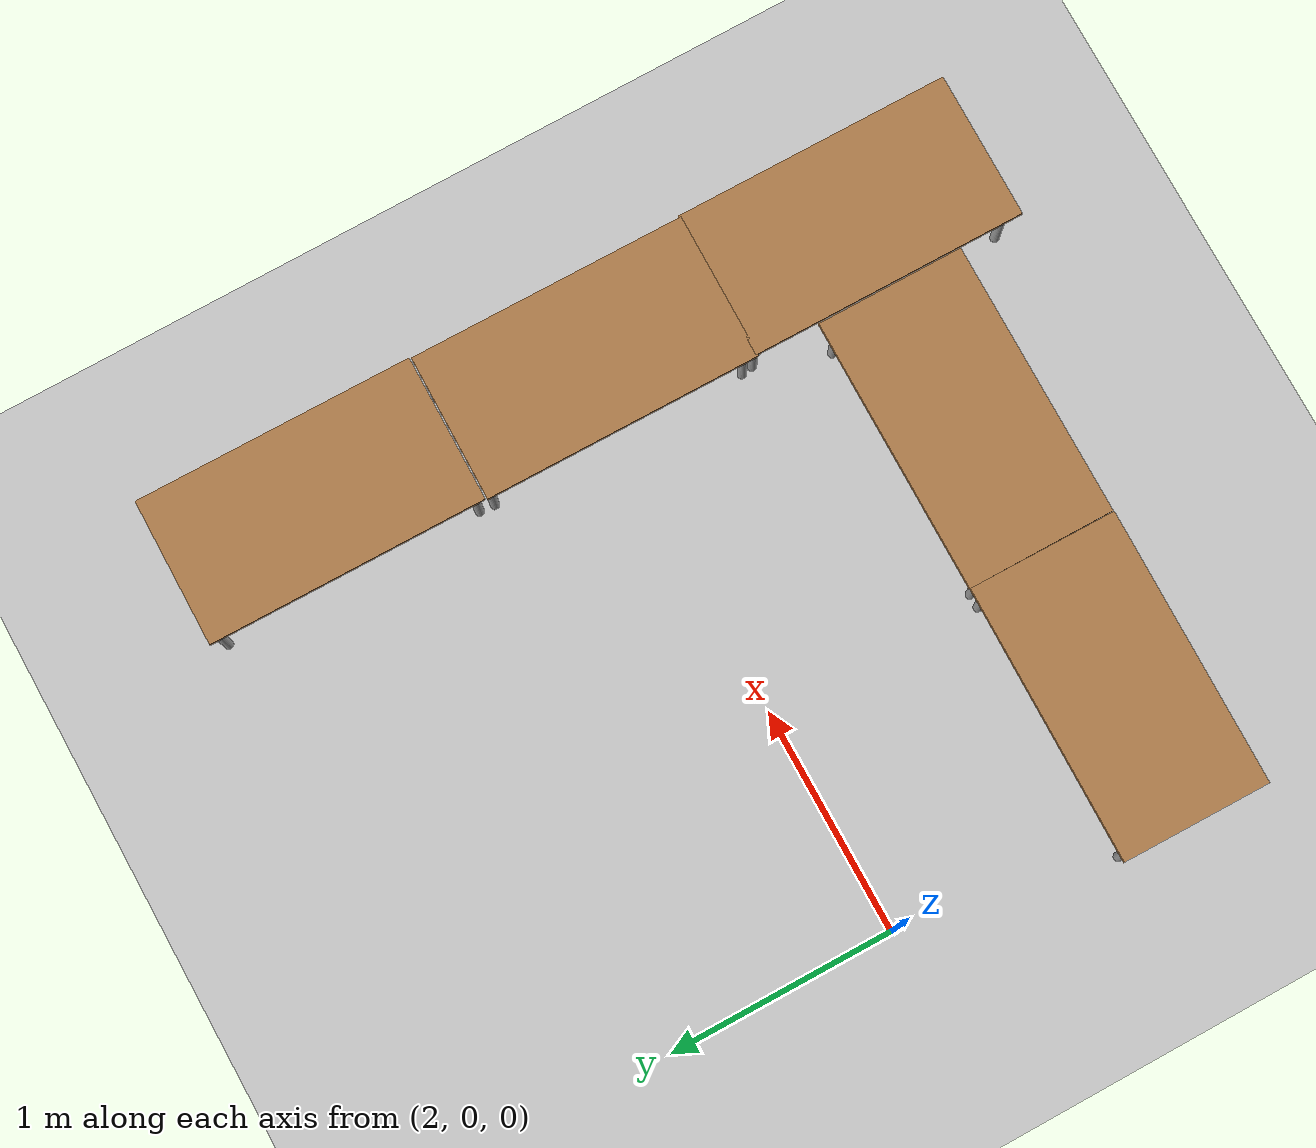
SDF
<sdf version="1.7">
 <world name="default">
  <model name="ground_plane">
   <static>1</static>
   <link name="link">
    <collision name="collision">
     <geometry><plane><normal>0 0 1</normal><size>100 100</size></plane></geometry>
     <surface>
      <contact><collide_bitmask>65535</collide_bitmask></contact>
      <friction><ode><mu>100</mu><mu2>50</mu2></ode></friction>
     </surface>
    </collision>
    <visual name="visual">
     <cast_shadows>0</cast_shadows>
     <geometry><plane><normal>0 0 1</normal><size>100 100</size></plane></geometry>
     <material>
      <script><uri>file://media/materials/scripts/gazebo.material</uri><name>Gazebo/Grey</name></script>
     </material>
    </visual>
   </link>
  </model>
  <model name="table_for_pc_clone_8">
   <link name="link">
    <inertial>
     <mass>1</mass>
     <inertia><ixx>1</ixx><ixy>0</ixy><ixz>0</ixz><iyy>1</iyy><iyz>0</iyz><izz>1</izz></inertia>
    </inertial>
    <visual name="back_right_leg">
     <pose>-0.57 -0.25 0.25 0 -0 0</pose>
     <geometry><cylinder><radius>0.02</radius><length>0.5</length></cylinder></geometry>
     <material>
      <script><uri>file://media/materials/scripts/gazebo.material</uri><name>Gazebo/Grey</name></script>
      <shader type="vertex"><normal_map>__default__</normal_map></shader>
      <ambient>0.3 0.3 0.3 1</ambient>
      <diffuse>0.7 0.7 0.7 1</diffuse>
      <specular>0.01 0.01 0.01 1</specular>
      <emissive>0 0 0 1</emissive>
     </material>
    </visual>
    <visual name="back_left_leg">
     <pose>-0.57 0.25 0.25 0 -0 0</pose>
     <geometry><cylinder><radius>0.02</radius><length>0.5</length></cylinder></geometry>
     <material>
      <script><uri>file://media/materials/scripts/gazebo.material</uri><name>Gazebo/Grey</name></script>
      <shader type="vertex"><normal_map>__default__</normal_map></shader>
      <ambient>0.3 0.3 0.3 1</ambient>
      <diffuse>0.7 0.7 0.7 1</diffuse>
      <specular>0.01 0.01 0.01 1</specular>
      <emissive>0 0 0 1</emissive>
     </material>
    </visual>
    <visual name="front_right_leg">
     <pose>0.57 -0.25 0.25 0 -0 0</pose>
     <geometry><cylinder><radius>0.02</radius><length>0.5</length></cylinder></geometry>
     <material>
      <script><uri>file://media/materials/scripts/gazebo.material</uri><name>Gazebo/Grey</name></script>
      <shader type="vertex"><normal_map>__default__</normal_map></shader>
      <ambient>0.3 0.3 0.3 1</ambient>
      <diffuse>0.7 0.7 0.7 1</diffuse>
      <specular>0.01 0.01 0.01 1</specular>
      <emissive>0 0 0 1</emissive>
     </material>
    </visual>
    <visual name="visual1">
     <pose>0 0 0.5 0 -0 0</pose>
     <geometry><box><size>1.2 0.64 0.024</size></box></geometry>
     <material>
      <script><uri>file://media/materials/scripts/gazebo.material</uri><name>Gazebo/Wood</name></script>
      <shader type="vertex"><normal_map>__default__</normal_map></shader>
      <ambient>1 1 1 1</ambient>
      <diffuse>1 1 1 1</diffuse>
      <specular>0.2 0.2 0.2 1</specular>
      <emissive>0 0 0 1</emissive>
     </material>
    </visual>
    <visual name="front_left_leg">
     <pose>0.57 0.25 0.25 0 -0 0</pose>
     <geometry><cylinder><radius>0.02</radius><length>0.5</length></cylinder></geometry>
     <material>
      <script><uri>file://media/materials/scripts/gazebo.material</uri><name>Gazebo/Grey</name></script>
      <shader type="vertex"><normal_map>__default__</normal_map></shader>
      <ambient>0.3 0.3 0.3 1</ambient>
      <diffuse>0.7 0.7 0.7 1</diffuse>
      <specular>0.01 0.01 0.01 1</specular>
      <emissive>0 0 0 1</emissive>
     </material>
    </visual>
    <collision name="surface">
     <pose>0 0 0.5 0 -0 0</pose>
     <geometry><box><size>1.2 0.64 0.024</size></box></geometry>
     <surface>
      <friction>
       <ode><mu>0.6</mu><mu2>0.6</mu2><fdir1>0 0 0</fdir1><slip1>0</slip1><slip2>0</slip2></ode>
       <torsional>
        <coefficient>1</coefficient>
        <patch_radius>0</patch_radius>
        <surface_radius>0</surface_radius>
        <use_patch_radius>1</use_patch_radius>
        <ode><slip>0</slip></ode>
       </torsional>
      </friction>
      <bounce><restitution_coefficient>0</restitution_coefficient><threshold>1e+06</threshold></bounce>
      <contact>
       <collide_without_contact>0</collide_without_contact>
       <collide_without_contact_bitmask>1</collide_without_contact_bitmask>
       <collide_bitmask>1</collide_bitmask>
       <ode>
        <soft_cfm>0</soft_cfm>
        <soft_erp>0.2</soft_erp>
        <kp>1e+13</kp>
        <kd>1</kd>
        <max_vel>0.01</max_vel>
        <min_depth>0</min_depth>
       </ode>
       <bullet>
        <split_impulse>1</split_impulse>
        <split_impulse_penetration_threshold>-0.01</split_impulse_penetration_threshold>
        <soft_cfm>0</soft_cfm>
        <soft_erp>0.2</soft_erp>
        <kp>1e+13</kp>
        <kd>1</kd>
       </bullet>
      </contact>
     </surface>
    </collision>
    <collision name="back_right_leg">
     <pose>-0.57 -0.25 0.25 0 -0 0</pose>
     <geometry><cylinder><radius>0.02</radius><length>0.5</length></cylinder></geometry>
     <surface>
      <friction>
       <ode><mu>1</mu><mu2>1</mu2><fdir1>0 0 0</fdir1><slip1>0</slip1><slip2>0</slip2></ode>
       <torsional>
        <coefficient>1</coefficient>
        <patch_radius>0</patch_radius>
        <surface_radius>0</surface_radius>
        <use_patch_radius>1</use_patch_radius>
        <ode><slip>0</slip></ode>
       </torsional>
      </friction>
      <bounce><restitution_coefficient>0</restitution_coefficient><threshold>1e+06</threshold></bounce>
      <contact>
       <collide_without_contact>0</collide_without_contact>
       <collide_without_contact_bitmask>1</collide_without_contact_bitmask>
       <collide_bitmask>1</collide_bitmask>
       <ode>
        <soft_cfm>0</soft_cfm>
        <soft_erp>0.2</soft_erp>
        <kp>1e+13</kp>
        <kd>1</kd>
        <max_vel>0.01</max_vel>
        <min_depth>0</min_depth>
       </ode>
       <bullet>
        <split_impulse>1</split_impulse>
        <split_impulse_penetration_threshold>-0.01</split_impulse_penetration_threshold>
        <soft_cfm>0</soft_cfm>
        <soft_erp>0.2</soft_erp>
        <kp>1e+13</kp>
        <kd>1</kd>
       </bullet>
      </contact>
     </surface>
    </collision>
    <collision name="front_right_leg">
     <pose>0.57 -0.25 0.25 0 -0 0</pose>
     <geometry><cylinder><radius>0.02</radius><length>0.5</length></cylinder></geometry>
     <surface>
      <friction>
       <ode><mu>1</mu><mu2>1</mu2><fdir1>0 0 0</fdir1><slip1>0</slip1><slip2>0</slip2></ode>
       <torsional>
        <coefficient>1</coefficient>
        <patch_radius>0</patch_radius>
        <surface_radius>0</surface_radius>
        <use_patch_radius>1</use_patch_radius>
        <ode><slip>0</slip></ode>
       </torsional>
      </friction>
      <bounce><restitution_coefficient>0</restitution_coefficient><threshold>1e+06</threshold></bounce>
      <contact>
       <collide_without_contact>0</collide_without_contact>
       <collide_without_contact_bitmask>1</collide_without_contact_bitmask>
       <collide_bitmask>1</collide_bitmask>
       <ode>
        <soft_cfm>0</soft_cfm>
        <soft_erp>0.2</soft_erp>
        <kp>1e+13</kp>
        <kd>1</kd>
        <max_vel>0.01</max_vel>
        <min_depth>0</min_depth>
       </ode>
       <bullet>
        <split_impulse>1</split_impulse>
        <split_impulse_penetration_threshold>-0.01</split_impulse_penetration_threshold>
        <soft_cfm>0</soft_cfm>
        <soft_erp>0.2</soft_erp>
        <kp>1e+13</kp>
        <kd>1</kd>
       </bullet>
      </contact>
     </surface>
    </collision>
    <collision name="back_left_leg">
     <pose>-0.57 0.25 0.25 0 -0 0</pose>
     <geometry><cylinder><radius>0.02</radius><length>0.5</length></cylinder></geometry>
     <surface>
      <friction>
       <ode><mu>1</mu><mu2>1</mu2><fdir1>0 0 0</fdir1><slip1>0</slip1><slip2>0</slip2></ode>
       <torsional>
        <coefficient>1</coefficient>
        <patch_radius>0</patch_radius>
        <surface_radius>0</surface_radius>
        <use_patch_radius>1</use_patch_radius>
        <ode><slip>0</slip></ode>
       </torsional>
      </friction>
      <bounce><restitution_coefficient>0</restitution_coefficient><threshold>1e+06</threshold></bounce>
      <contact>
       <collide_without_contact>0</collide_without_contact>
       <collide_without_contact_bitmask>1</collide_without_contact_bitmask>
       <collide_bitmask>1</collide_bitmask>
       <ode>
        <soft_cfm>0</soft_cfm>
        <soft_erp>0.2</soft_erp>
        <kp>1e+13</kp>
        <kd>1</kd>
        <max_vel>0.01</max_vel>
        <min_depth>0</min_depth>
       </ode>
       <bullet>
        <split_impulse>1</split_impulse>
        <split_impulse_penetration_threshold>-0.01</split_impulse_penetration_threshold>
        <soft_cfm>0</soft_cfm>
        <soft_erp>0.2</soft_erp>
        <kp>1e+13</kp>
        <kd>1</kd>
       </bullet>
      </contact>
     </surface>
    </collision>
    <collision name="front_left_leg">
     <pose>0.57 0.25 0.25 0 -0 0</pose>
     <geometry><cylinder><radius>0.02</radius><length>0.5</length></cylinder></geometry>
     <surface>
      <friction>
       <ode><mu>1</mu><mu2>1</mu2><fdir1>0 0 0</fdir1><slip1>0</slip1><slip2>0</slip2></ode>
       <torsional>
        <coefficient>1</coefficient>
        <patch_radius>0</patch_radius>
        <surface_radius>0</surface_radius>
        <use_patch_radius>1</use_patch_radius>
        <ode><slip>0</slip></ode>
       </torsional>
      </friction>
      <bounce><restitution_coefficient>0</restitution_coefficient><threshold>1e+06</threshold></bounce>
      <contact>
       <collide_without_contact>0</collide_without_contact>
       <collide_without_contact_bitmask>1</collide_without_contact_bitmask>
       <collide_bitmask>1</collide_bitmask>
       <ode>
        <soft_cfm>0</soft_cfm>
        <soft_erp>0.2</soft_erp>
        <kp>1e+13</kp>
        <kd>1</kd>
        <max_vel>0.01</max_vel>
        <min_depth>0</min_depth>
       </ode>
       <bullet>
        <split_impulse>1</split_impulse>
        <split_impulse_penetration_threshold>-0.01</split_impulse_penetration_threshold>
        <soft_cfm>0</soft_cfm>
        <soft_erp>0.2</soft_erp>
        <kp>1e+13</kp>
        <kd>1</kd>
       </bullet>
      </contact>
     </surface>
    </collision>
   </link>
   <static>1</static>
   <pose>4.53252 1.1992 0 0 -0 1.56413</pose>
  </model>
  <model name="table_for_pc_clone_9">
   <link name="link">
    <inertial>
     <mass>1</mass>
     <inertia><ixx>1</ixx><ixy>0</ixy><ixz>0</ixz><iyy>1</iyy><iyz>0</iyz><izz>1</izz></inertia>
    </inertial>
    <visual name="back_right_leg">
     <pose>-0.57 -0.25 0.25 0 -0 0</pose>
     <geometry><cylinder><radius>0.02</radius><length>0.5</length></cylinder></geometry>
     <material>
      <script><uri>file://media/materials/scripts/gazebo.material</uri><name>Gazebo/Grey</name></script>
      <shader type="vertex"><normal_map>__default__</normal_map></shader>
      <ambient>0.3 0.3 0.3 1</ambient>
      <diffuse>0.7 0.7 0.7 1</diffuse>
      <specular>0.01 0.01 0.01 1</specular>
      <emissive>0 0 0 1</emissive>
     </material>
    </visual>
    <visual name="back_left_leg">
     <pose>-0.57 0.25 0.25 0 -0 0</pose>
     <geometry><cylinder><radius>0.02</radius><length>0.5</length></cylinder></geometry>
     <material>
      <script><uri>file://media/materials/scripts/gazebo.material</uri><name>Gazebo/Grey</name></script>
      <shader type="vertex"><normal_map>__default__</normal_map></shader>
      <ambient>0.3 0.3 0.3 1</ambient>
      <diffuse>0.7 0.7 0.7 1</diffuse>
      <specular>0.01 0.01 0.01 1</specular>
      <emissive>0 0 0 1</emissive>
     </material>
    </visual>
    <visual name="front_right_leg">
     <pose>0.57 -0.25 0.25 0 -0 0</pose>
     <geometry><cylinder><radius>0.02</radius><length>0.5</length></cylinder></geometry>
     <material>
      <script><uri>file://media/materials/scripts/gazebo.material</uri><name>Gazebo/Grey</name></script>
      <shader type="vertex"><normal_map>__default__</normal_map></shader>
      <ambient>0.3 0.3 0.3 1</ambient>
      <diffuse>0.7 0.7 0.7 1</diffuse>
      <specular>0.01 0.01 0.01 1</specular>
      <emissive>0 0 0 1</emissive>
     </material>
    </visual>
    <visual name="visual1">
     <pose>0 0 0.5 0 -0 0</pose>
     <geometry><box><size>1.2 0.64 0.024</size></box></geometry>
     <material>
      <script><uri>file://media/materials/scripts/gazebo.material</uri><name>Gazebo/Wood</name></script>
      <shader type="vertex"><normal_map>__default__</normal_map></shader>
      <ambient>1 1 1 1</ambient>
      <diffuse>1 1 1 1</diffuse>
      <specular>0.2 0.2 0.2 1</specular>
      <emissive>0 0 0 1</emissive>
     </material>
    </visual>
    <visual name="front_left_leg">
     <pose>0.57 0.25 0.25 0 -0 0</pose>
     <geometry><cylinder><radius>0.02</radius><length>0.5</length></cylinder></geometry>
     <material>
      <script><uri>file://media/materials/scripts/gazebo.material</uri><name>Gazebo/Grey</name></script>
      <shader type="vertex"><normal_map>__default__</normal_map></shader>
      <ambient>0.3 0.3 0.3 1</ambient>
      <diffuse>0.7 0.7 0.7 1</diffuse>
      <specular>0.01 0.01 0.01 1</specular>
      <emissive>0 0 0 1</emissive>
     </material>
    </visual>
    <collision name="surface">
     <pose>0 0 0.5 0 -0 0</pose>
     <geometry><box><size>1.2 0.64 0.024</size></box></geometry>
     <surface>
      <friction>
       <ode><mu>0.6</mu><mu2>0.6</mu2><fdir1>0 0 0</fdir1><slip1>0</slip1><slip2>0</slip2></ode>
       <torsional>
        <coefficient>1</coefficient>
        <patch_radius>0</patch_radius>
        <surface_radius>0</surface_radius>
        <use_patch_radius>1</use_patch_radius>
        <ode><slip>0</slip></ode>
       </torsional>
      </friction>
      <bounce><restitution_coefficient>0</restitution_coefficient><threshold>1e+06</threshold></bounce>
      <contact>
       <collide_without_contact>0</collide_without_contact>
       <collide_without_contact_bitmask>1</collide_without_contact_bitmask>
       <collide_bitmask>1</collide_bitmask>
       <ode>
        <soft_cfm>0</soft_cfm>
        <soft_erp>0.2</soft_erp>
        <kp>1e+13</kp>
        <kd>1</kd>
        <max_vel>0.01</max_vel>
        <min_depth>0</min_depth>
       </ode>
       <bullet>
        <split_impulse>1</split_impulse>
        <split_impulse_penetration_threshold>-0.01</split_impulse_penetration_threshold>
        <soft_cfm>0</soft_cfm>
        <soft_erp>0.2</soft_erp>
        <kp>1e+13</kp>
        <kd>1</kd>
       </bullet>
      </contact>
     </surface>
    </collision>
    <collision name="back_right_leg">
     <pose>-0.57 -0.25 0.25 0 -0 0</pose>
     <geometry><cylinder><radius>0.02</radius><length>0.5</length></cylinder></geometry>
     <surface>
      <friction>
       <ode><mu>1</mu><mu2>1</mu2><fdir1>0 0 0</fdir1><slip1>0</slip1><slip2>0</slip2></ode>
       <torsional>
        <coefficient>1</coefficient>
        <patch_radius>0</patch_radius>
        <surface_radius>0</surface_radius>
        <use_patch_radius>1</use_patch_radius>
        <ode><slip>0</slip></ode>
       </torsional>
      </friction>
      <bounce><restitution_coefficient>0</restitution_coefficient><threshold>1e+06</threshold></bounce>
      <contact>
       <collide_without_contact>0</collide_without_contact>
       <collide_without_contact_bitmask>1</collide_without_contact_bitmask>
       <collide_bitmask>1</collide_bitmask>
       <ode>
        <soft_cfm>0</soft_cfm>
        <soft_erp>0.2</soft_erp>
        <kp>1e+13</kp>
        <kd>1</kd>
        <max_vel>0.01</max_vel>
        <min_depth>0</min_depth>
       </ode>
       <bullet>
        <split_impulse>1</split_impulse>
        <split_impulse_penetration_threshold>-0.01</split_impulse_penetration_threshold>
        <soft_cfm>0</soft_cfm>
        <soft_erp>0.2</soft_erp>
        <kp>1e+13</kp>
        <kd>1</kd>
       </bullet>
      </contact>
     </surface>
    </collision>
    <collision name="front_right_leg">
     <pose>0.57 -0.25 0.25 0 -0 0</pose>
     <geometry><cylinder><radius>0.02</radius><length>0.5</length></cylinder></geometry>
     <surface>
      <friction>
       <ode><mu>1</mu><mu2>1</mu2><fdir1>0 0 0</fdir1><slip1>0</slip1><slip2>0</slip2></ode>
       <torsional>
        <coefficient>1</coefficient>
        <patch_radius>0</patch_radius>
        <surface_radius>0</surface_radius>
        <use_patch_radius>1</use_patch_radius>
        <ode><slip>0</slip></ode>
       </torsional>
      </friction>
      <bounce><restitution_coefficient>0</restitution_coefficient><threshold>1e+06</threshold></bounce>
      <contact>
       <collide_without_contact>0</collide_without_contact>
       <collide_without_contact_bitmask>1</collide_without_contact_bitmask>
       <collide_bitmask>1</collide_bitmask>
       <ode>
        <soft_cfm>0</soft_cfm>
        <soft_erp>0.2</soft_erp>
        <kp>1e+13</kp>
        <kd>1</kd>
        <max_vel>0.01</max_vel>
        <min_depth>0</min_depth>
       </ode>
       <bullet>
        <split_impulse>1</split_impulse>
        <split_impulse_penetration_threshold>-0.01</split_impulse_penetration_threshold>
        <soft_cfm>0</soft_cfm>
        <soft_erp>0.2</soft_erp>
        <kp>1e+13</kp>
        <kd>1</kd>
       </bullet>
      </contact>
     </surface>
    </collision>
    <collision name="back_left_leg">
     <pose>-0.57 0.25 0.25 0 -0 0</pose>
     <geometry><cylinder><radius>0.02</radius><length>0.5</length></cylinder></geometry>
     <surface>
      <friction>
       <ode><mu>1</mu><mu2>1</mu2><fdir1>0 0 0</fdir1><slip1>0</slip1><slip2>0</slip2></ode>
       <torsional>
        <coefficient>1</coefficient>
        <patch_radius>0</patch_radius>
        <surface_radius>0</surface_radius>
        <use_patch_radius>1</use_patch_radius>
        <ode><slip>0</slip></ode>
       </torsional>
      </friction>
      <bounce><restitution_coefficient>0</restitution_coefficient><threshold>1e+06</threshold></bounce>
      <contact>
       <collide_without_contact>0</collide_without_contact>
       <collide_without_contact_bitmask>1</collide_without_contact_bitmask>
       <collide_bitmask>1</collide_bitmask>
       <ode>
        <soft_cfm>0</soft_cfm>
        <soft_erp>0.2</soft_erp>
        <kp>1e+13</kp>
        <kd>1</kd>
        <max_vel>0.01</max_vel>
        <min_depth>0</min_depth>
       </ode>
       <bullet>
        <split_impulse>1</split_impulse>
        <split_impulse_penetration_threshold>-0.01</split_impulse_penetration_threshold>
        <soft_cfm>0</soft_cfm>
        <soft_erp>0.2</soft_erp>
        <kp>1e+13</kp>
        <kd>1</kd>
       </bullet>
      </contact>
     </surface>
    </collision>
    <collision name="front_left_leg">
     <pose>0.57 0.25 0.25 0 -0 0</pose>
     <geometry><cylinder><radius>0.02</radius><length>0.5</length></cylinder></geometry>
     <surface>
      <friction>
       <ode><mu>1</mu><mu2>1</mu2><fdir1>0 0 0</fdir1><slip1>0</slip1><slip2>0</slip2></ode>
       <torsional>
        <coefficient>1</coefficient>
        <patch_radius>0</patch_radius>
        <surface_radius>0</surface_radius>
        <use_patch_radius>1</use_patch_radius>
        <ode><slip>0</slip></ode>
       </torsional>
      </friction>
      <bounce><restitution_coefficient>0</restitution_coefficient><threshold>1e+06</threshold></bounce>
      <contact>
       <collide_without_contact>0</collide_without_contact>
       <collide_without_contact_bitmask>1</collide_without_contact_bitmask>
       <collide_bitmask>1</collide_bitmask>
       <ode>
        <soft_cfm>0</soft_cfm>
        <soft_erp>0.2</soft_erp>
        <kp>1e+13</kp>
        <kd>1</kd>
        <max_vel>0.01</max_vel>
        <min_depth>0</min_depth>
       </ode>
       <bullet>
        <split_impulse>1</split_impulse>
        <split_impulse_penetration_threshold>-0.01</split_impulse_penetration_threshold>
        <soft_cfm>0</soft_cfm>
        <soft_erp>0.2</soft_erp>
        <kp>1e+13</kp>
        <kd>1</kd>
       </bullet>
      </contact>
     </surface>
    </collision>
   </link>
   <static>1</static>
   <pose>4.51975 -0.007646 0 0 -0 1.56413</pose>
  </model>
  <model name="table_for_pc_clone_10">
   <link name="link">
    <inertial>
     <mass>1</mass>
     <inertia><ixx>1</ixx><ixy>0</ixy><ixz>0</ixz><iyy>1</iyy><iyz>0</iyz><izz>1</izz></inertia>
    </inertial>
    <visual name="back_right_leg">
     <pose>-0.57 -0.25 0.25 0 -0 0</pose>
     <geometry><cylinder><radius>0.02</radius><length>0.5</length></cylinder></geometry>
     <material>
      <script><uri>file://media/materials/scripts/gazebo.material</uri><name>Gazebo/Grey</name></script>
      <shader type="vertex"><normal_map>__default__</normal_map></shader>
      <ambient>0.3 0.3 0.3 1</ambient>
      <diffuse>0.7 0.7 0.7 1</diffuse>
      <specular>0.01 0.01 0.01 1</specular>
      <emissive>0 0 0 1</emissive>
     </material>
    </visual>
    <visual name="back_left_leg">
     <pose>-0.57 0.25 0.25 0 -0 0</pose>
     <geometry><cylinder><radius>0.02</radius><length>0.5</length></cylinder></geometry>
     <material>
      <script><uri>file://media/materials/scripts/gazebo.material</uri><name>Gazebo/Grey</name></script>
      <shader type="vertex"><normal_map>__default__</normal_map></shader>
      <ambient>0.3 0.3 0.3 1</ambient>
      <diffuse>0.7 0.7 0.7 1</diffuse>
      <specular>0.01 0.01 0.01 1</specular>
      <emissive>0 0 0 1</emissive>
     </material>
    </visual>
    <visual name="front_right_leg">
     <pose>0.57 -0.25 0.25 0 -0 0</pose>
     <geometry><cylinder><radius>0.02</radius><length>0.5</length></cylinder></geometry>
     <material>
      <script><uri>file://media/materials/scripts/gazebo.material</uri><name>Gazebo/Grey</name></script>
      <shader type="vertex"><normal_map>__default__</normal_map></shader>
      <ambient>0.3 0.3 0.3 1</ambient>
      <diffuse>0.7 0.7 0.7 1</diffuse>
      <specular>0.01 0.01 0.01 1</specular>
      <emissive>0 0 0 1</emissive>
     </material>
    </visual>
    <visual name="visual1">
     <pose>0 0 0.5 0 -0 0</pose>
     <geometry><box><size>1.2 0.64 0.024</size></box></geometry>
     <material>
      <script><uri>file://media/materials/scripts/gazebo.material</uri><name>Gazebo/Wood</name></script>
      <shader type="vertex"><normal_map>__default__</normal_map></shader>
      <ambient>1 1 1 1</ambient>
      <diffuse>1 1 1 1</diffuse>
      <specular>0.2 0.2 0.2 1</specular>
      <emissive>0 0 0 1</emissive>
     </material>
    </visual>
    <visual name="front_left_leg">
     <pose>0.57 0.25 0.25 0 -0 0</pose>
     <geometry><cylinder><radius>0.02</radius><length>0.5</length></cylinder></geometry>
     <material>
      <script><uri>file://media/materials/scripts/gazebo.material</uri><name>Gazebo/Grey</name></script>
      <shader type="vertex"><normal_map>__default__</normal_map></shader>
      <ambient>0.3 0.3 0.3 1</ambient>
      <diffuse>0.7 0.7 0.7 1</diffuse>
      <specular>0.01 0.01 0.01 1</specular>
      <emissive>0 0 0 1</emissive>
     </material>
    </visual>
    <collision name="surface">
     <pose>0 0 0.5 0 -0 0</pose>
     <geometry><box><size>1.2 0.64 0.024</size></box></geometry>
     <surface>
      <friction>
       <ode><mu>0.6</mu><mu2>0.6</mu2><fdir1>0 0 0</fdir1><slip1>0</slip1><slip2>0</slip2></ode>
       <torsional>
        <coefficient>1</coefficient>
        <patch_radius>0</patch_radius>
        <surface_radius>0</surface_radius>
        <use_patch_radius>1</use_patch_radius>
        <ode><slip>0</slip></ode>
       </torsional>
      </friction>
      <bounce><restitution_coefficient>0</restitution_coefficient><threshold>1e+06</threshold></bounce>
      <contact>
       <collide_without_contact>0</collide_without_contact>
       <collide_without_contact_bitmask>1</collide_without_contact_bitmask>
       <collide_bitmask>1</collide_bitmask>
       <ode>
        <soft_cfm>0</soft_cfm>
        <soft_erp>0.2</soft_erp>
        <kp>1e+13</kp>
        <kd>1</kd>
        <max_vel>0.01</max_vel>
        <min_depth>0</min_depth>
       </ode>
       <bullet>
        <split_impulse>1</split_impulse>
        <split_impulse_penetration_threshold>-0.01</split_impulse_penetration_threshold>
        <soft_cfm>0</soft_cfm>
        <soft_erp>0.2</soft_erp>
        <kp>1e+13</kp>
        <kd>1</kd>
       </bullet>
      </contact>
     </surface>
    </collision>
    <collision name="back_right_leg">
     <pose>-0.57 -0.25 0.25 0 -0 0</pose>
     <geometry><cylinder><radius>0.02</radius><length>0.5</length></cylinder></geometry>
     <surface>
      <friction>
       <ode><mu>1</mu><mu2>1</mu2><fdir1>0 0 0</fdir1><slip1>0</slip1><slip2>0</slip2></ode>
       <torsional>
        <coefficient>1</coefficient>
        <patch_radius>0</patch_radius>
        <surface_radius>0</surface_radius>
        <use_patch_radius>1</use_patch_radius>
        <ode><slip>0</slip></ode>
       </torsional>
      </friction>
      <bounce><restitution_coefficient>0</restitution_coefficient><threshold>1e+06</threshold></bounce>
      <contact>
       <collide_without_contact>0</collide_without_contact>
       <collide_without_contact_bitmask>1</collide_without_contact_bitmask>
       <collide_bitmask>1</collide_bitmask>
       <ode>
        <soft_cfm>0</soft_cfm>
        <soft_erp>0.2</soft_erp>
        <kp>1e+13</kp>
        <kd>1</kd>
        <max_vel>0.01</max_vel>
        <min_depth>0</min_depth>
       </ode>
       <bullet>
        <split_impulse>1</split_impulse>
        <split_impulse_penetration_threshold>-0.01</split_impulse_penetration_threshold>
        <soft_cfm>0</soft_cfm>
        <soft_erp>0.2</soft_erp>
        <kp>1e+13</kp>
        <kd>1</kd>
       </bullet>
      </contact>
     </surface>
    </collision>
    <collision name="front_right_leg">
     <pose>0.57 -0.25 0.25 0 -0 0</pose>
     <geometry><cylinder><radius>0.02</radius><length>0.5</length></cylinder></geometry>
     <surface>
      <friction>
       <ode><mu>1</mu><mu2>1</mu2><fdir1>0 0 0</fdir1><slip1>0</slip1><slip2>0</slip2></ode>
       <torsional>
        <coefficient>1</coefficient>
        <patch_radius>0</patch_radius>
        <surface_radius>0</surface_radius>
        <use_patch_radius>1</use_patch_radius>
        <ode><slip>0</slip></ode>
       </torsional>
      </friction>
      <bounce><restitution_coefficient>0</restitution_coefficient><threshold>1e+06</threshold></bounce>
      <contact>
       <collide_without_contact>0</collide_without_contact>
       <collide_without_contact_bitmask>1</collide_without_contact_bitmask>
       <collide_bitmask>1</collide_bitmask>
       <ode>
        <soft_cfm>0</soft_cfm>
        <soft_erp>0.2</soft_erp>
        <kp>1e+13</kp>
        <kd>1</kd>
        <max_vel>0.01</max_vel>
        <min_depth>0</min_depth>
       </ode>
       <bullet>
        <split_impulse>1</split_impulse>
        <split_impulse_penetration_threshold>-0.01</split_impulse_penetration_threshold>
        <soft_cfm>0</soft_cfm>
        <soft_erp>0.2</soft_erp>
        <kp>1e+13</kp>
        <kd>1</kd>
       </bullet>
      </contact>
     </surface>
    </collision>
    <collision name="back_left_leg">
     <pose>-0.57 0.25 0.25 0 -0 0</pose>
     <geometry><cylinder><radius>0.02</radius><length>0.5</length></cylinder></geometry>
     <surface>
      <friction>
       <ode><mu>1</mu><mu2>1</mu2><fdir1>0 0 0</fdir1><slip1>0</slip1><slip2>0</slip2></ode>
       <torsional>
        <coefficient>1</coefficient>
        <patch_radius>0</patch_radius>
        <surface_radius>0</surface_radius>
        <use_patch_radius>1</use_patch_radius>
        <ode><slip>0</slip></ode>
       </torsional>
      </friction>
      <bounce><restitution_coefficient>0</restitution_coefficient><threshold>1e+06</threshold></bounce>
      <contact>
       <collide_without_contact>0</collide_without_contact>
       <collide_without_contact_bitmask>1</collide_without_contact_bitmask>
       <collide_bitmask>1</collide_bitmask>
       <ode>
        <soft_cfm>0</soft_cfm>
        <soft_erp>0.2</soft_erp>
        <kp>1e+13</kp>
        <kd>1</kd>
        <max_vel>0.01</max_vel>
        <min_depth>0</min_depth>
       </ode>
       <bullet>
        <split_impulse>1</split_impulse>
        <split_impulse_penetration_threshold>-0.01</split_impulse_penetration_threshold>
        <soft_cfm>0</soft_cfm>
        <soft_erp>0.2</soft_erp>
        <kp>1e+13</kp>
        <kd>1</kd>
       </bullet>
      </contact>
     </surface>
    </collision>
    <collision name="front_left_leg">
     <pose>0.57 0.25 0.25 0 -0 0</pose>
     <geometry><cylinder><radius>0.02</radius><length>0.5</length></cylinder></geometry>
     <surface>
      <friction>
       <ode><mu>1</mu><mu2>1</mu2><fdir1>0 0 0</fdir1><slip1>0</slip1><slip2>0</slip2></ode>
       <torsional>
        <coefficient>1</coefficient>
        <patch_radius>0</patch_radius>
        <surface_radius>0</surface_radius>
        <use_patch_radius>1</use_patch_radius>
        <ode><slip>0</slip></ode>
       </torsional>
      </friction>
      <bounce><restitution_coefficient>0</restitution_coefficient><threshold>1e+06</threshold></bounce>
      <contact>
       <collide_without_contact>0</collide_without_contact>
       <collide_without_contact_bitmask>1</collide_without_contact_bitmask>
       <collide_bitmask>1</collide_bitmask>
       <ode>
        <soft_cfm>0</soft_cfm>
        <soft_erp>0.2</soft_erp>
        <kp>1e+13</kp>
        <kd>1</kd>
        <max_vel>0.01</max_vel>
        <min_depth>0</min_depth>
       </ode>
       <bullet>
        <split_impulse>1</split_impulse>
        <split_impulse_penetration_threshold>-0.01</split_impulse_penetration_threshold>
        <soft_cfm>0</soft_cfm>
        <soft_erp>0.2</soft_erp>
        <kp>1e+13</kp>
        <kd>1</kd>
       </bullet>
      </contact>
     </surface>
    </collision>
   </link>
   <static>1</static>
   <pose>4.52051 -1.19797 0 0 -0 1.56628</pose>
  </model>
  <model name="table_for_pc_clone_10_clone">
   <link name="link">
    <inertial>
     <mass>1</mass>
     <inertia><ixx>1</ixx><ixy>0</ixy><ixz>0</ixz><iyy>1</iyy><iyz>0</iyz><izz>1</izz></inertia>
    </inertial>
    <visual name="back_right_leg">
     <pose>-0.57 -0.25 0.25 0 -0 0</pose>
     <geometry><cylinder><radius>0.02</radius><length>0.5</length></cylinder></geometry>
     <material>
      <script><uri>file://media/materials/scripts/gazebo.material</uri><name>Gazebo/Grey</name></script>
      <shader type="vertex"><normal_map>__default__</normal_map></shader>
      <ambient>0.3 0.3 0.3 1</ambient>
      <diffuse>0.7 0.7 0.7 1</diffuse>
      <specular>0.01 0.01 0.01 1</specular>
      <emissive>0 0 0 1</emissive>
     </material>
    </visual>
    <visual name="back_left_leg">
     <pose>-0.57 0.25 0.25 0 -0 0</pose>
     <geometry><cylinder><radius>0.02</radius><length>0.5</length></cylinder></geometry>
     <material>
      <script><uri>file://media/materials/scripts/gazebo.material</uri><name>Gazebo/Grey</name></script>
      <shader type="vertex"><normal_map>__default__</normal_map></shader>
      <ambient>0.3 0.3 0.3 1</ambient>
      <diffuse>0.7 0.7 0.7 1</diffuse>
      <specular>0.01 0.01 0.01 1</specular>
      <emissive>0 0 0 1</emissive>
     </material>
    </visual>
    <visual name="front_right_leg">
     <pose>0.57 -0.25 0.25 0 -0 0</pose>
     <geometry><cylinder><radius>0.02</radius><length>0.5</length></cylinder></geometry>
     <material>
      <script><uri>file://media/materials/scripts/gazebo.material</uri><name>Gazebo/Grey</name></script>
      <shader type="vertex"><normal_map>__default__</normal_map></shader>
      <ambient>0.3 0.3 0.3 1</ambient>
      <diffuse>0.7 0.7 0.7 1</diffuse>
      <specular>0.01 0.01 0.01 1</specular>
      <emissive>0 0 0 1</emissive>
     </material>
    </visual>
    <visual name="visual1">
     <pose>0 0 0.5 0 -0 0</pose>
     <geometry><box><size>1.2 0.64 0.024</size></box></geometry>
     <material>
      <script><uri>file://media/materials/scripts/gazebo.material</uri><name>Gazebo/Wood</name></script>
      <shader type="vertex"><normal_map>__default__</normal_map></shader>
      <ambient>1 1 1 1</ambient>
      <diffuse>1 1 1 1</diffuse>
      <specular>0.2 0.2 0.2 1</specular>
      <emissive>0 0 0 1</emissive>
     </material>
    </visual>
    <visual name="front_left_leg">
     <pose>0.57 0.25 0.25 0 -0 0</pose>
     <geometry><cylinder><radius>0.02</radius><length>0.5</length></cylinder></geometry>
     <material>
      <script><uri>file://media/materials/scripts/gazebo.material</uri><name>Gazebo/Grey</name></script>
      <shader type="vertex"><normal_map>__default__</normal_map></shader>
      <ambient>0.3 0.3 0.3 1</ambient>
      <diffuse>0.7 0.7 0.7 1</diffuse>
      <specular>0.01 0.01 0.01 1</specular>
      <emissive>0 0 0 1</emissive>
     </material>
    </visual>
    <collision name="surface">
     <pose>0 0 0.5 0 -0 0</pose>
     <geometry><box><size>1.2 0.64 0.024</size></box></geometry>
     <surface>
      <friction>
       <ode><mu>0.6</mu><mu2>0.6</mu2><fdir1>0 0 0</fdir1><slip1>0</slip1><slip2>0</slip2></ode>
       <torsional>
        <coefficient>1</coefficient>
        <patch_radius>0</patch_radius>
        <surface_radius>0</surface_radius>
        <use_patch_radius>1</use_patch_radius>
        <ode><slip>0</slip></ode>
       </torsional>
      </friction>
      <bounce><restitution_coefficient>0</restitution_coefficient><threshold>1e+06</threshold></bounce>
      <contact>
       <collide_without_contact>0</collide_without_contact>
       <collide_without_contact_bitmask>1</collide_without_contact_bitmask>
       <collide_bitmask>1</collide_bitmask>
       <ode>
        <soft_cfm>0</soft_cfm>
        <soft_erp>0.2</soft_erp>
        <kp>1e+13</kp>
        <kd>1</kd>
        <max_vel>0.01</max_vel>
        <min_depth>0</min_depth>
       </ode>
       <bullet>
        <split_impulse>1</split_impulse>
        <split_impulse_penetration_threshold>-0.01</split_impulse_penetration_threshold>
        <soft_cfm>0</soft_cfm>
        <soft_erp>0.2</soft_erp>
        <kp>1e+13</kp>
        <kd>1</kd>
       </bullet>
      </contact>
     </surface>
    </collision>
    <collision name="back_right_leg">
     <pose>-0.57 -0.25 0.25 0 -0 0</pose>
     <geometry><cylinder><radius>0.02</radius><length>0.5</length></cylinder></geometry>
     <surface>
      <friction>
       <ode><mu>1</mu><mu2>1</mu2><fdir1>0 0 0</fdir1><slip1>0</slip1><slip2>0</slip2></ode>
       <torsional>
        <coefficient>1</coefficient>
        <patch_radius>0</patch_radius>
        <surface_radius>0</surface_radius>
        <use_patch_radius>1</use_patch_radius>
        <ode><slip>0</slip></ode>
       </torsional>
      </friction>
      <bounce><restitution_coefficient>0</restitution_coefficient><threshold>1e+06</threshold></bounce>
      <contact>
       <collide_without_contact>0</collide_without_contact>
       <collide_without_contact_bitmask>1</collide_without_contact_bitmask>
       <collide_bitmask>1</collide_bitmask>
       <ode>
        <soft_cfm>0</soft_cfm>
        <soft_erp>0.2</soft_erp>
        <kp>1e+13</kp>
        <kd>1</kd>
        <max_vel>0.01</max_vel>
        <min_depth>0</min_depth>
       </ode>
       <bullet>
        <split_impulse>1</split_impulse>
        <split_impulse_penetration_threshold>-0.01</split_impulse_penetration_threshold>
        <soft_cfm>0</soft_cfm>
        <soft_erp>0.2</soft_erp>
        <kp>1e+13</kp>
        <kd>1</kd>
       </bullet>
      </contact>
     </surface>
    </collision>
    <collision name="front_right_leg">
     <pose>0.57 -0.25 0.25 0 -0 0</pose>
     <geometry><cylinder><radius>0.02</radius><length>0.5</length></cylinder></geometry>
     <surface>
      <friction>
       <ode><mu>1</mu><mu2>1</mu2><fdir1>0 0 0</fdir1><slip1>0</slip1><slip2>0</slip2></ode>
       <torsional>
        <coefficient>1</coefficient>
        <patch_radius>0</patch_radius>
        <surface_radius>0</surface_radius>
        <use_patch_radius>1</use_patch_radius>
        <ode><slip>0</slip></ode>
       </torsional>
      </friction>
      <bounce><restitution_coefficient>0</restitution_coefficient><threshold>1e+06</threshold></bounce>
      <contact>
       <collide_without_contact>0</collide_without_contact>
       <collide_without_contact_bitmask>1</collide_without_contact_bitmask>
       <collide_bitmask>1</collide_bitmask>
       <ode>
        <soft_cfm>0</soft_cfm>
        <soft_erp>0.2</soft_erp>
        <kp>1e+13</kp>
        <kd>1</kd>
        <max_vel>0.01</max_vel>
        <min_depth>0</min_depth>
       </ode>
       <bullet>
        <split_impulse>1</split_impulse>
        <split_impulse_penetration_threshold>-0.01</split_impulse_penetration_threshold>
        <soft_cfm>0</soft_cfm>
        <soft_erp>0.2</soft_erp>
        <kp>1e+13</kp>
        <kd>1</kd>
       </bullet>
      </contact>
     </surface>
    </collision>
    <collision name="back_left_leg">
     <pose>-0.57 0.25 0.25 0 -0 0</pose>
     <geometry><cylinder><radius>0.02</radius><length>0.5</length></cylinder></geometry>
     <surface>
      <friction>
       <ode><mu>1</mu><mu2>1</mu2><fdir1>0 0 0</fdir1><slip1>0</slip1><slip2>0</slip2></ode>
       <torsional>
        <coefficient>1</coefficient>
        <patch_radius>0</patch_radius>
        <surface_radius>0</surface_radius>
        <use_patch_radius>1</use_patch_radius>
        <ode><slip>0</slip></ode>
       </torsional>
      </friction>
      <bounce><restitution_coefficient>0</restitution_coefficient><threshold>1e+06</threshold></bounce>
      <contact>
       <collide_without_contact>0</collide_without_contact>
       <collide_without_contact_bitmask>1</collide_without_contact_bitmask>
       <collide_bitmask>1</collide_bitmask>
       <ode>
        <soft_cfm>0</soft_cfm>
        <soft_erp>0.2</soft_erp>
        <kp>1e+13</kp>
        <kd>1</kd>
        <max_vel>0.01</max_vel>
        <min_depth>0</min_depth>
       </ode>
       <bullet>
        <split_impulse>1</split_impulse>
        <split_impulse_penetration_threshold>-0.01</split_impulse_penetration_threshold>
        <soft_cfm>0</soft_cfm>
        <soft_erp>0.2</soft_erp>
        <kp>1e+13</kp>
        <kd>1</kd>
       </bullet>
      </contact>
     </surface>
    </collision>
    <collision name="front_left_leg">
     <pose>0.57 0.25 0.25 0 -0 0</pose>
     <geometry><cylinder><radius>0.02</radius><length>0.5</length></cylinder></geometry>
     <surface>
      <friction>
       <ode><mu>1</mu><mu2>1</mu2><fdir1>0 0 0</fdir1><slip1>0</slip1><slip2>0</slip2></ode>
       <torsional>
        <coefficient>1</coefficient>
        <patch_radius>0</patch_radius>
        <surface_radius>0</surface_radius>
        <use_patch_radius>1</use_patch_radius>
        <ode><slip>0</slip></ode>
       </torsional>
      </friction>
      <bounce><restitution_coefficient>0</restitution_coefficient><threshold>1e+06</threshold></bounce>
      <contact>
       <collide_without_contact>0</collide_without_contact>
       <collide_without_contact_bitmask>1</collide_without_contact_bitmask>
       <collide_bitmask>1</collide_bitmask>
       <ode>
        <soft_cfm>0</soft_cfm>
        <soft_erp>0.2</soft_erp>
        <kp>1e+13</kp>
        <kd>1</kd>
        <max_vel>0.01</max_vel>
        <min_depth>0</min_depth>
       </ode>
       <bullet>
        <split_impulse>1</split_impulse>
        <split_impulse_penetration_threshold>-0.01</split_impulse_penetration_threshold>
        <soft_cfm>0</soft_cfm>
        <soft_erp>0.2</soft_erp>
        <kp>1e+13</kp>
        <kd>1</kd>
       </bullet>
      </contact>
     </surface>
    </collision>
   </link>
   <static>1</static>
   <pose>3.59348 -1.19138 0 0 -0 3.13903</pose>
  </model>
  <model name="table_for_pc_clone_10_clone_clone">
   <link name="link">
    <inertial>
     <mass>1</mass>
     <inertia><ixx>1</ixx><ixy>0</ixy><ixz>0</ixz><iyy>1</iyy><iyz>0</iyz><izz>1</izz></inertia>
    </inertial>
    <visual name="back_right_leg">
     <pose>-0.57 -0.25 0.25 0 -0 0</pose>
     <geometry><cylinder><radius>0.02</radius><length>0.5</length></cylinder></geometry>
     <material>
      <script><uri>file://media/materials/scripts/gazebo.material</uri><name>Gazebo/Grey</name></script>
      <shader type="vertex"><normal_map>__default__</normal_map></shader>
      <ambient>0.3 0.3 0.3 1</ambient>
      <diffuse>0.7 0.7 0.7 1</diffuse>
      <specular>0.01 0.01 0.01 1</specular>
      <emissive>0 0 0 1</emissive>
     </material>
    </visual>
    <visual name="back_left_leg">
     <pose>-0.57 0.25 0.25 0 -0 0</pose>
     <geometry><cylinder><radius>0.02</radius><length>0.5</length></cylinder></geometry>
     <material>
      <script><uri>file://media/materials/scripts/gazebo.material</uri><name>Gazebo/Grey</name></script>
      <shader type="vertex"><normal_map>__default__</normal_map></shader>
      <ambient>0.3 0.3 0.3 1</ambient>
      <diffuse>0.7 0.7 0.7 1</diffuse>
      <specular>0.01 0.01 0.01 1</specular>
      <emissive>0 0 0 1</emissive>
     </material>
    </visual>
    <visual name="front_right_leg">
     <pose>0.57 -0.25 0.25 0 -0 0</pose>
     <geometry><cylinder><radius>0.02</radius><length>0.5</length></cylinder></geometry>
     <material>
      <script><uri>file://media/materials/scripts/gazebo.material</uri><name>Gazebo/Grey</name></script>
      <shader type="vertex"><normal_map>__default__</normal_map></shader>
      <ambient>0.3 0.3 0.3 1</ambient>
      <diffuse>0.7 0.7 0.7 1</diffuse>
      <specular>0.01 0.01 0.01 1</specular>
      <emissive>0 0 0 1</emissive>
     </material>
    </visual>
    <visual name="visual1">
     <pose>0 0 0.5 0 -0 0</pose>
     <geometry><box><size>1.2 0.64 0.024</size></box></geometry>
     <material>
      <script><uri>file://media/materials/scripts/gazebo.material</uri><name>Gazebo/Wood</name></script>
      <shader type="vertex"><normal_map>__default__</normal_map></shader>
      <ambient>1 1 1 1</ambient>
      <diffuse>1 1 1 1</diffuse>
      <specular>0.2 0.2 0.2 1</specular>
      <emissive>0 0 0 1</emissive>
     </material>
    </visual>
    <visual name="front_left_leg">
     <pose>0.57 0.25 0.25 0 -0 0</pose>
     <geometry><cylinder><radius>0.02</radius><length>0.5</length></cylinder></geometry>
     <material>
      <script><uri>file://media/materials/scripts/gazebo.material</uri><name>Gazebo/Grey</name></script>
      <shader type="vertex"><normal_map>__default__</normal_map></shader>
      <ambient>0.3 0.3 0.3 1</ambient>
      <diffuse>0.7 0.7 0.7 1</diffuse>
      <specular>0.01 0.01 0.01 1</specular>
      <emissive>0 0 0 1</emissive>
     </material>
    </visual>
    <collision name="surface">
     <pose>0 0 0.5 0 -0 0</pose>
     <geometry><box><size>1.2 0.64 0.024</size></box></geometry>
     <surface>
      <friction>
       <ode><mu>0.6</mu><mu2>0.6</mu2><fdir1>0 0 0</fdir1><slip1>0</slip1><slip2>0</slip2></ode>
       <torsional>
        <coefficient>1</coefficient>
        <patch_radius>0</patch_radius>
        <surface_radius>0</surface_radius>
        <use_patch_radius>1</use_patch_radius>
        <ode><slip>0</slip></ode>
       </torsional>
      </friction>
      <bounce><restitution_coefficient>0</restitution_coefficient><threshold>1e+06</threshold></bounce>
      <contact>
       <collide_without_contact>0</collide_without_contact>
       <collide_without_contact_bitmask>1</collide_without_contact_bitmask>
       <collide_bitmask>1</collide_bitmask>
       <ode>
        <soft_cfm>0</soft_cfm>
        <soft_erp>0.2</soft_erp>
        <kp>1e+13</kp>
        <kd>1</kd>
        <max_vel>0.01</max_vel>
        <min_depth>0</min_depth>
       </ode>
       <bullet>
        <split_impulse>1</split_impulse>
        <split_impulse_penetration_threshold>-0.01</split_impulse_penetration_threshold>
        <soft_cfm>0</soft_cfm>
        <soft_erp>0.2</soft_erp>
        <kp>1e+13</kp>
        <kd>1</kd>
       </bullet>
      </contact>
     </surface>
    </collision>
    <collision name="back_right_leg">
     <pose>-0.57 -0.25 0.25 0 -0 0</pose>
     <geometry><cylinder><radius>0.02</radius><length>0.5</length></cylinder></geometry>
     <surface>
      <friction>
       <ode><mu>1</mu><mu2>1</mu2><fdir1>0 0 0</fdir1><slip1>0</slip1><slip2>0</slip2></ode>
       <torsional>
        <coefficient>1</coefficient>
        <patch_radius>0</patch_radius>
        <surface_radius>0</surface_radius>
        <use_patch_radius>1</use_patch_radius>
        <ode><slip>0</slip></ode>
       </torsional>
      </friction>
      <bounce><restitution_coefficient>0</restitution_coefficient><threshold>1e+06</threshold></bounce>
      <contact>
       <collide_without_contact>0</collide_without_contact>
       <collide_without_contact_bitmask>1</collide_without_contact_bitmask>
       <collide_bitmask>1</collide_bitmask>
       <ode>
        <soft_cfm>0</soft_cfm>
        <soft_erp>0.2</soft_erp>
        <kp>1e+13</kp>
        <kd>1</kd>
        <max_vel>0.01</max_vel>
        <min_depth>0</min_depth>
       </ode>
       <bullet>
        <split_impulse>1</split_impulse>
        <split_impulse_penetration_threshold>-0.01</split_impulse_penetration_threshold>
        <soft_cfm>0</soft_cfm>
        <soft_erp>0.2</soft_erp>
        <kp>1e+13</kp>
        <kd>1</kd>
       </bullet>
      </contact>
     </surface>
    </collision>
    <collision name="front_right_leg">
     <pose>0.57 -0.25 0.25 0 -0 0</pose>
     <geometry><cylinder><radius>0.02</radius><length>0.5</length></cylinder></geometry>
     <surface>
      <friction>
       <ode><mu>1</mu><mu2>1</mu2><fdir1>0 0 0</fdir1><slip1>0</slip1><slip2>0</slip2></ode>
       <torsional>
        <coefficient>1</coefficient>
        <patch_radius>0</patch_radius>
        <surface_radius>0</surface_radius>
        <use_patch_radius>1</use_patch_radius>
        <ode><slip>0</slip></ode>
       </torsional>
      </friction>
      <bounce><restitution_coefficient>0</restitution_coefficient><threshold>1e+06</threshold></bounce>
      <contact>
       <collide_without_contact>0</collide_without_contact>
       <collide_without_contact_bitmask>1</collide_without_contact_bitmask>
       <collide_bitmask>1</collide_bitmask>
       <ode>
        <soft_cfm>0</soft_cfm>
        <soft_erp>0.2</soft_erp>
        <kp>1e+13</kp>
        <kd>1</kd>
        <max_vel>0.01</max_vel>
        <min_depth>0</min_depth>
       </ode>
       <bullet>
        <split_impulse>1</split_impulse>
        <split_impulse_penetration_threshold>-0.01</split_impulse_penetration_threshold>
        <soft_cfm>0</soft_cfm>
        <soft_erp>0.2</soft_erp>
        <kp>1e+13</kp>
        <kd>1</kd>
       </bullet>
      </contact>
     </surface>
    </collision>
    <collision name="back_left_leg">
     <pose>-0.57 0.25 0.25 0 -0 0</pose>
     <geometry><cylinder><radius>0.02</radius><length>0.5</length></cylinder></geometry>
     <surface>
      <friction>
       <ode><mu>1</mu><mu2>1</mu2><fdir1>0 0 0</fdir1><slip1>0</slip1><slip2>0</slip2></ode>
       <torsional>
        <coefficient>1</coefficient>
        <patch_radius>0</patch_radius>
        <surface_radius>0</surface_radius>
        <use_patch_radius>1</use_patch_radius>
        <ode><slip>0</slip></ode>
       </torsional>
      </friction>
      <bounce><restitution_coefficient>0</restitution_coefficient><threshold>1e+06</threshold></bounce>
      <contact>
       <collide_without_contact>0</collide_without_contact>
       <collide_without_contact_bitmask>1</collide_without_contact_bitmask>
       <collide_bitmask>1</collide_bitmask>
       <ode>
        <soft_cfm>0</soft_cfm>
        <soft_erp>0.2</soft_erp>
        <kp>1e+13</kp>
        <kd>1</kd>
        <max_vel>0.01</max_vel>
        <min_depth>0</min_depth>
       </ode>
       <bullet>
        <split_impulse>1</split_impulse>
        <split_impulse_penetration_threshold>-0.01</split_impulse_penetration_threshold>
        <soft_cfm>0</soft_cfm>
        <soft_erp>0.2</soft_erp>
        <kp>1e+13</kp>
        <kd>1</kd>
       </bullet>
      </contact>
     </surface>
    </collision>
    <collision name="front_left_leg">
     <pose>0.57 0.25 0.25 0 -0 0</pose>
     <geometry><cylinder><radius>0.02</radius><length>0.5</length></cylinder></geometry>
     <surface>
      <friction>
       <ode><mu>1</mu><mu2>1</mu2><fdir1>0 0 0</fdir1><slip1>0</slip1><slip2>0</slip2></ode>
       <torsional>
        <coefficient>1</coefficient>
        <patch_radius>0</patch_radius>
        <surface_radius>0</surface_radius>
        <use_patch_radius>1</use_patch_radius>
        <ode><slip>0</slip></ode>
       </torsional>
      </friction>
      <bounce><restitution_coefficient>0</restitution_coefficient><threshold>1e+06</threshold></bounce>
      <contact>
       <collide_without_contact>0</collide_without_contact>
       <collide_without_contact_bitmask>1</collide_without_contact_bitmask>
       <collide_bitmask>1</collide_bitmask>
       <ode>
        <soft_cfm>0</soft_cfm>
        <soft_erp>0.2</soft_erp>
        <kp>1e+13</kp>
        <kd>1</kd>
        <max_vel>0.01</max_vel>
        <min_depth>0</min_depth>
       </ode>
       <bullet>
        <split_impulse>1</split_impulse>
        <split_impulse_penetration_threshold>-0.01</split_impulse_penetration_threshold>
        <soft_cfm>0</soft_cfm>
        <soft_erp>0.2</soft_erp>
        <kp>1e+13</kp>
        <kd>1</kd>
       </bullet>
      </contact>
     </surface>
    </collision>
   </link>
   <static>1</static>
   <pose>2.39191 -1.18675 0 0 -0 3.1327</pose>
  </model>
 </world>
</sdf>
